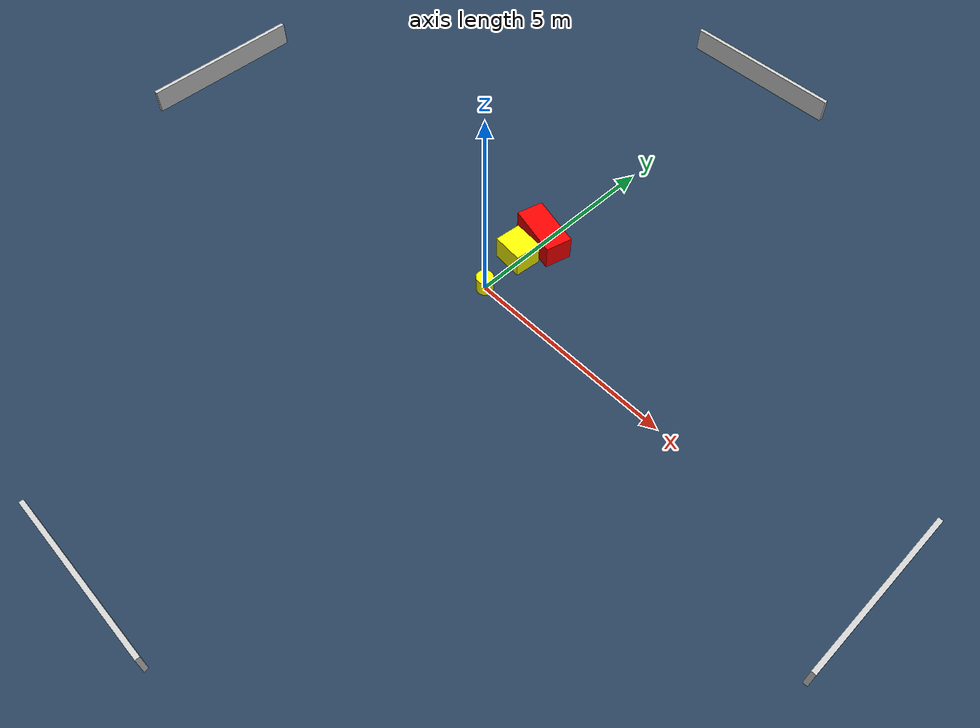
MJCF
<?xml version="1.0" ?>
<mujoco model="generated_environment">
  <option timestep="0.01" integrator="RK4" cone="elliptic"/>
  <default>
    <geom density="1"/>
  </default>
  <asset>
    <texture builtin="gradient" height="3072" name="skybox" rgb1="0.3 0.5 0.7" rgb2="0 0 0" type="skybox" width="512"/>
    <texture builtin="checker" height="300" name="groundplane" rgb1="0.2 0.3 0.4" rgb2="0.1 0.2 0.3" type="2d" width="300"/>
    <material name="groundplane" reflectance="0.2" texrepeat="5 5" texture="groundplane"/>
  </asset>
  <worldbody>
    <light dir="0 0 -1" directional="true" pos="0 0 1.5"/>
    <geom condim="3" friction="0.5 0.005 0.001" material="groundplane" name="floor" pos="0 0 0" size="0 0 0.05" type="plane"/>
    <body name="walls">
      <geom name="wall_1" condim="4" pos="-10.0 0.0 0.3" rgba="0.800000011920929 0.800000011920929 0.800000011920929 1.0" size="0.05 2.0 0.3" type="box"/>
      <geom name="wall_2" condim="4" pos="10.0 0.0 0.3" rgba="0.800000011920929 0.800000011920929 0.800000011920929 1.0" size="0.05 2.0 0.3" type="box"/>
      <geom name="wall_3" condim="4" pos="0.0 -10.0 0.3" rgba="0.800000011920929 0.800000011920929 0.800000011920929 1.0" size="2.0 0.05 0.3" type="box"/>
      <geom name="wall_4" condim="4" pos="0.0 10.0 0.3" rgba="0.800000011920929 0.800000011920929 0.800000011920929 1.0" size="2.0 0.05 0.3" type="box"/>
    </body>
    <body name="robot">
      <joint name="joint_x" type="slide" pos="0 0 0" axis="1 0 0"/>
      <joint name="joint_y" type="slide" pos="0 0 0" axis="0 1 0"/>
      <geom name="robot" type="cylinder" pos="0.0 0.0 0.2" size="0.2 0.2 0.0" mass="5.0" friction="1.0 0.005 0.0001" condim="4" rgba="1.0 1.0 0.0 1.0"/>
    </body>
    <body name="obstacle_1_movable">
      <geom name="obstacle_1_movable" condim="4" pos="-0.09962595220087272 1.1268636798695577 0.3" euler="0 0 174.9497342154534" friction="0.0 0.005 0.001" rgba="1.0 1.0 0.0 1.0" size="0.36775987915637987 0.318978925943775 0.3" type="box" mass="0.1"/>
      <joint type="free"/>
    </body>
    <body name="obstacle_2_static">
      <geom name="obstacle_2_static" condim="4" pos="-0.020812350997842424 1.8869441153860596 0.3" euler="0 0 165.67210935631357" friction="0.0 0.005 0.001" rgba="1.0 0.0 0.0 1.0" size="0.641788688397342 0.3200340940798864 0.3" type="box"/>
    </body>
  </worldbody>
  <actuator>
    <motor name="actuator_x" joint="joint_x" gear="1" ctrlrange="-1 1"/>
    <motor name="actuator_y" joint="joint_y" gear="1" ctrlrange="-1 1"/>
  </actuator>
</mujoco>
